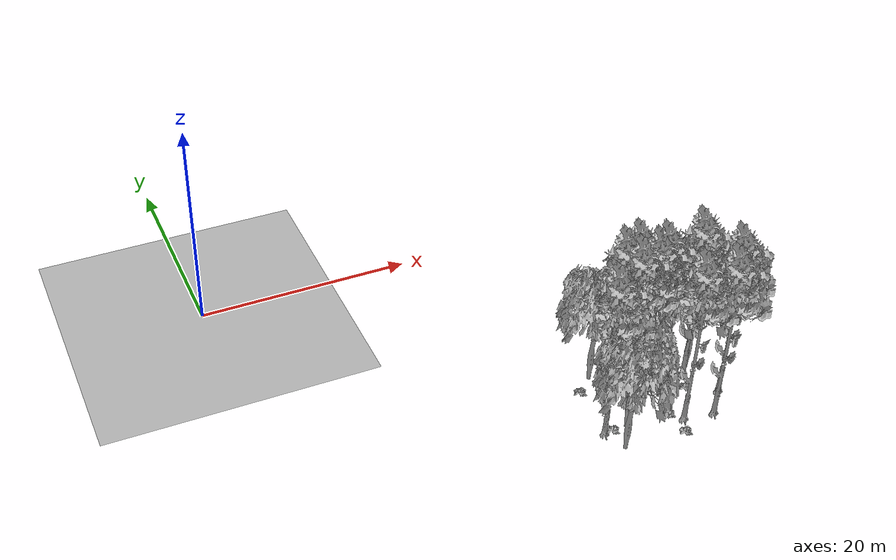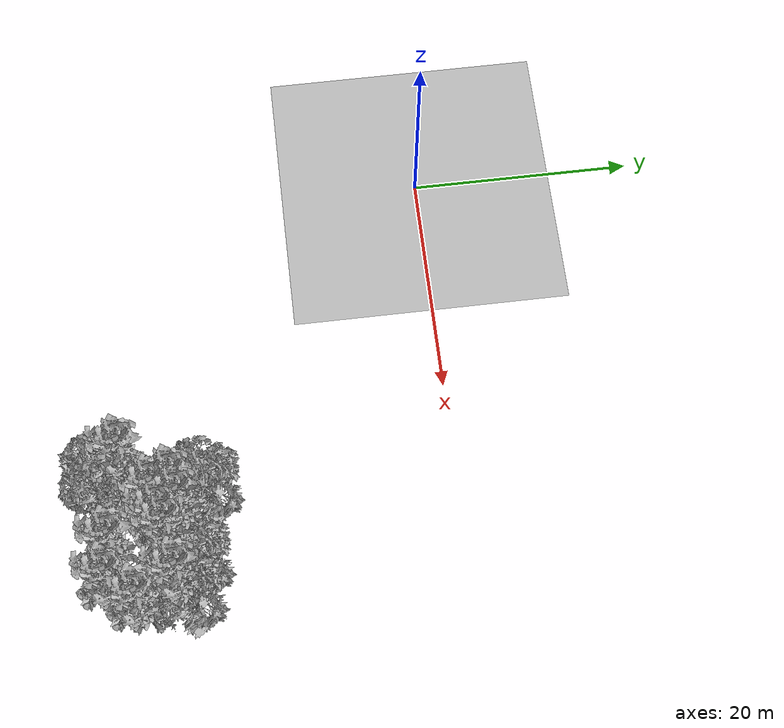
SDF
<sdf version="1.7">
 <world name="default">
  <model name="ground_plane">
   <static>1</static>
   <link name="link">
    <collision name="collision">
     <pose>-50 0 0 0 -0 0</pose>
     <geometry><plane><normal>0 0 1</normal><size>80 80</size></plane></geometry>
     <surface><contact><ode><min_depth>0.01</min_depth><max_vel>0</max_vel></ode></contact></surface>
    </collision>
    <visual name="grass">
     <cast_shadows>0</cast_shadows>
     <geometry>
      <mesh>
       <scale>0.46714285714285714 0.46714285714285714 0.1</scale>
       <uri>file://grass_plane/meshes/grass_plane.dae</uri>
      </mesh>
     </geometry>
    </visual>
   </link>
  </model>
  <model name="Tree 12">
   <static>1</static>
   <pose>36.71630920072428 -28.52139253806697 0 1.57079 -0 0</pose>
   <link name="link">
    <collision name="collision">
     <geometry><mesh><scale>3.5 5 3.5</scale><uri>model://tree_9/meshes/tree_9.obj</uri></mesh></geometry>
    </collision>
    <visual name="visual">
     <geometry><mesh><scale>3.5 5 3.5</scale><uri>model://tree_9/meshes/tree_9.obj</uri></mesh></geometry>
    </visual>
   </link>
  </model>
  <model name="Tree 44">
   <static>1</static>
   <pose>31.264341815391063 -22.87279649594364 0 1.57079 -0 0</pose>
   <link name="link">
    <collision name="collision">
     <geometry><mesh><scale>3.5 5 3.5</scale><uri>model://tree_9/meshes/tree_9.obj</uri></mesh></geometry>
    </collision>
    <visual name="visual">
     <geometry><mesh><scale>3.5 5 3.5</scale><uri>model://tree_9/meshes/tree_9.obj</uri></mesh></geometry>
    </visual>
   </link>
  </model>
  <model name="Tree 213">
   <static>1</static>
   <pose>27.426625961924316 -29.427883055198983 0 1.57079 -0 0</pose>
   <link name="link">
    <collision name="collision">
     <geometry><mesh><scale>3.5 5 3.5</scale><uri>model://tree_2/meshes/tree_2.obj</uri></mesh></geometry>
    </collision>
    <visual name="visual">
     <geometry><mesh><scale>3.5 5 3.5</scale><uri>model://tree_2/meshes/tree_2.obj</uri></mesh></geometry>
    </visual>
   </link>
  </model>
  <model name="Tree 235">
   <static>1</static>
   <pose>38.56714271613359 -26.36512517379633 0 1.57079 -0 0</pose>
   <link name="link">
    <collision name="collision">
     <geometry><mesh><scale>3.5 5 3.5</scale><uri>model://tree_9/meshes/tree_9.obj</uri></mesh></geometry>
    </collision>
    <visual name="visual">
     <geometry><mesh><scale>3.5 5 3.5</scale><uri>model://tree_9/meshes/tree_9.obj</uri></mesh></geometry>
    </visual>
   </link>
  </model>
  <model name="Tree 271">
   <static>1</static>
   <pose>26.90004548094028 -27.111469221525326 0 1.57079 -0 0</pose>
   <link name="link">
    <collision name="collision">
     <geometry><mesh><scale>3.5 5 3.5</scale><uri>model://tree_9/meshes/tree_9.obj</uri></mesh></geometry>
    </collision>
    <visual name="visual">
     <geometry><mesh><scale>3.5 5 3.5</scale><uri>model://tree_9/meshes/tree_9.obj</uri></mesh></geometry>
    </visual>
   </link>
  </model>
  <model name="Tree 279">
   <static>1</static>
   <pose>33.23359401011206 -23.91265706254112 0 1.57079 -0 0</pose>
   <link name="link">
    <collision name="collision">
     <geometry><mesh><scale>3.5 5 3.5</scale><uri>model://tree_9/meshes/tree_9.obj</uri></mesh></geometry>
    </collision>
    <visual name="visual">
     <geometry><mesh><scale>3.5 5 3.5</scale><uri>model://tree_9/meshes/tree_9.obj</uri></mesh></geometry>
    </visual>
   </link>
  </model>
  <model name="Tree 301">
   <static>1</static>
   <pose>32.2554113846311 -24.31338692139912 0 1.57079 -0 0</pose>
   <link name="link">
    <collision name="collision">
     <geometry><mesh><scale>3.5 5 3.5</scale><uri>model://tree_9/meshes/tree_9.obj</uri></mesh></geometry>
    </collision>
    <visual name="visual">
     <geometry><mesh><scale>3.5 5 3.5</scale><uri>model://tree_9/meshes/tree_9.obj</uri></mesh></geometry>
    </visual>
   </link>
  </model>
  <model name="Tree 313">
   <static>1</static>
   <pose>37.38050212849602 -22.835913851313823 0 1.57079 -0 0</pose>
   <link name="link">
    <collision name="collision">
     <geometry><mesh><scale>3.5 5 3.5</scale><uri>model://tree_2/meshes/tree_2.obj</uri></mesh></geometry>
    </collision>
    <visual name="visual">
     <geometry><mesh><scale>3.5 5 3.5</scale><uri>model://tree_2/meshes/tree_2.obj</uri></mesh></geometry>
    </visual>
   </link>
  </model>
  <model name="Tree 398">
   <static>1</static>
   <pose>33.97761491887955 -28.152024163099334 0 1.57079 -0 0</pose>
   <link name="link">
    <collision name="collision">
     <geometry><mesh><scale>3.5 5 3.5</scale><uri>model://tree_9/meshes/tree_9.obj</uri></mesh></geometry>
    </collision>
    <visual name="visual">
     <geometry><mesh><scale>3.5 5 3.5</scale><uri>model://tree_9/meshes/tree_9.obj</uri></mesh></geometry>
    </visual>
   </link>
  </model>
  <model name="Tree 431">
   <static>1</static>
   <pose>34.673788504735114 -22.100820017373344 0 1.57079 -0 0</pose>
   <link name="link">
    <collision name="collision">
     <geometry><mesh><scale>3.5 5 3.5</scale><uri>model://tree_2/meshes/tree_2.obj</uri></mesh></geometry>
    </collision>
    <visual name="visual">
     <geometry><mesh><scale>3.5 5 3.5</scale><uri>model://tree_2/meshes/tree_2.obj</uri></mesh></geometry>
    </visual>
   </link>
  </model>
  <model name="Tree 432">
   <static>1</static>
   <pose>30.338443560957813 -24.761038051000448 0 1.57079 -0 0</pose>
   <link name="link">
    <collision name="collision">
     <geometry><mesh><scale>3.5 5 3.5</scale><uri>model://tree_9/meshes/tree_9.obj</uri></mesh></geometry>
    </collision>
    <visual name="visual">
     <geometry><mesh><scale>3.5 5 3.5</scale><uri>model://tree_9/meshes/tree_9.obj</uri></mesh></geometry>
    </visual>
   </link>
  </model>
  <model name="Tree 453">
   <static>1</static>
   <pose>28.7761293004057 -27.251735212512695 0 1.57079 -0 0</pose>
   <link name="link">
    <collision name="collision">
     <geometry><mesh><scale>3.5 5 3.5</scale><uri>model://tree_2/meshes/tree_2.obj</uri></mesh></geometry>
    </collision>
    <visual name="visual">
     <geometry><mesh><scale>3.5 5 3.5</scale><uri>model://tree_2/meshes/tree_2.obj</uri></mesh></geometry>
    </visual>
   </link>
  </model>
  <model name="Tree 579">
   <static>1</static>
   <pose>29.770399201947498 -23.279474074532367 0 1.57079 -0 0</pose>
   <link name="link">
    <collision name="collision">
     <geometry><mesh><scale>3.5 5 3.5</scale><uri>model://tree_9/meshes/tree_9.obj</uri></mesh></geometry>
    </collision>
    <visual name="visual">
     <geometry><mesh><scale>3.5 5 3.5</scale><uri>model://tree_9/meshes/tree_9.obj</uri></mesh></geometry>
    </visual>
   </link>
  </model>
  <model name="Tree 595">
   <static>1</static>
   <pose>36.91638891794342 -23.32602460529742 0 1.57079 -0 0</pose>
   <link name="link">
    <collision name="collision">
     <geometry><mesh><scale>3.5 5 3.5</scale><uri>model://tree_9/meshes/tree_9.obj</uri></mesh></geometry>
    </collision>
    <visual name="visual">
     <geometry><mesh><scale>3.5 5 3.5</scale><uri>model://tree_9/meshes/tree_9.obj</uri></mesh></geometry>
    </visual>
   </link>
  </model>
  <model name="Tree 601">
   <static>1</static>
   <pose>28.70850726654126 -20.930166572945268 0 1.57079 -0 0</pose>
   <link name="link">
    <collision name="collision">
     <geometry><mesh><scale>3.5 5 3.5</scale><uri>model://tree_2/meshes/tree_2.obj</uri></mesh></geometry>
    </collision>
    <visual name="visual">
     <geometry><mesh><scale>3.5 5 3.5</scale><uri>model://tree_2/meshes/tree_2.obj</uri></mesh></geometry>
    </visual>
   </link>
  </model>
  <model name="Bush 31">
   <static>1</static>
   <pose>35.90930622456017 -25.19168273593455 0 1.57079 -0 0</pose>
   <link name="link">
    <collision name="collision">
     <geometry><mesh><scale>2 2 2</scale><uri>model://bush_2/meshes/bush_2.obj</uri></mesh></geometry>
     <surface><contact><collide_without_contact>false</collide_without_contact></contact></surface>
    </collision>
    <visual name="visual">
     <geometry><mesh><scale>2 2 2</scale><uri>model://bush_2/meshes/bush_2.obj</uri></mesh></geometry>
    </visual>
   </link>
  </model>
  <model name="Bush 143">
   <static>1</static>
   <pose>32.61376510863269 -22.0827826417636 0 1.57079 -0 0</pose>
   <link name="link">
    <collision name="collision">
     <geometry><mesh><scale>2 2 2</scale><uri>model://bush_0/meshes/bush_0.obj</uri></mesh></geometry>
     <surface><contact><collide_without_contact>false</collide_without_contact></contact></surface>
    </collision>
    <visual name="visual">
     <geometry><mesh><scale>2 2 2</scale><uri>model://bush_0/meshes/bush_0.obj</uri></mesh></geometry>
    </visual>
   </link>
  </model>
  <model name="Bush 172">
   <static>1</static>
   <pose>35.8459078213771 -23.273601681063045 0 1.57079 -0 0</pose>
   <link name="link">
    <collision name="collision">
     <geometry><mesh><scale>2 2 2</scale><uri>model://bush_5/meshes/bush_5.obj</uri></mesh></geometry>
     <surface><contact><collide_without_contact>false</collide_without_contact></contact></surface>
    </collision>
    <visual name="visual">
     <geometry><mesh><scale>2 2 2</scale><uri>model://bush_5/meshes/bush_5.obj</uri></mesh></geometry>
    </visual>
   </link>
  </model>
  <model name="Bush 181">
   <static>1</static>
   <pose>33.09711395911381 -29.7956072641918 0 1.57079 -0 0</pose>
   <link name="link">
    <collision name="collision">
     <geometry><mesh><scale>2 2 2</scale><uri>model://bush_2/meshes/bush_2.obj</uri></mesh></geometry>
     <surface><contact><collide_without_contact>false</collide_without_contact></contact></surface>
    </collision>
    <visual name="visual">
     <geometry><mesh><scale>2 2 2</scale><uri>model://bush_2/meshes/bush_2.obj</uri></mesh></geometry>
    </visual>
   </link>
  </model>
  <model name="Bush 196">
   <static>1</static>
   <pose>31.303206096379498 -20.653862704986548 0 1.57079 -0 0</pose>
   <link name="link">
    <collision name="collision">
     <geometry><mesh><scale>2 2 2</scale><uri>model://bush_2/meshes/bush_2.obj</uri></mesh></geometry>
     <surface><contact><collide_without_contact>false</collide_without_contact></contact></surface>
    </collision>
    <visual name="visual">
     <geometry><mesh><scale>2 2 2</scale><uri>model://bush_2/meshes/bush_2.obj</uri></mesh></geometry>
    </visual>
   </link>
  </model>
  <model name="Bush 420">
   <static>1</static>
   <pose>32.87562942971417 -27.487570398918226 0 1.57079 -0 0</pose>
   <link name="link">
    <collision name="collision">
     <geometry><mesh><scale>2 2 2</scale><uri>model://bush_2/meshes/bush_2.obj</uri></mesh></geometry>
     <surface><contact><collide_without_contact>false</collide_without_contact></contact></surface>
    </collision>
    <visual name="visual">
     <geometry><mesh><scale>2 2 2</scale><uri>model://bush_2/meshes/bush_2.obj</uri></mesh></geometry>
    </visual>
   </link>
  </model>
  <model name="Bush 494">
   <static>1</static>
   <pose>27.51449729029136 -27.361173347483216 0 1.57079 -0 0</pose>
   <link name="link">
    <collision name="collision">
     <geometry><mesh><scale>2 2 2</scale><uri>model://bush_2/meshes/bush_2.obj</uri></mesh></geometry>
     <surface><contact><collide_without_contact>false</collide_without_contact></contact></surface>
    </collision>
    <visual name="visual">
     <geometry><mesh><scale>2 2 2</scale><uri>model://bush_2/meshes/bush_2.obj</uri></mesh></geometry>
    </visual>
   </link>
  </model>
  <model name="Bush 612">
   <static>1</static>
   <pose>27.18126992566235 -22.309492772743997 0 1.57079 -0 0</pose>
   <link name="link">
    <collision name="collision">
     <geometry><mesh><scale>2 2 2</scale><uri>model://bush_2/meshes/bush_2.obj</uri></mesh></geometry>
     <surface><contact><collide_without_contact>false</collide_without_contact></contact></surface>
    </collision>
    <visual name="visual">
     <geometry><mesh><scale>2 2 2</scale><uri>model://bush_2/meshes/bush_2.obj</uri></mesh></geometry>
    </visual>
   </link>
  </model>
 </world>
</sdf>
